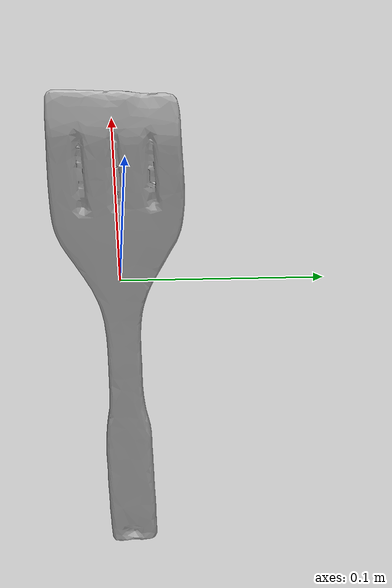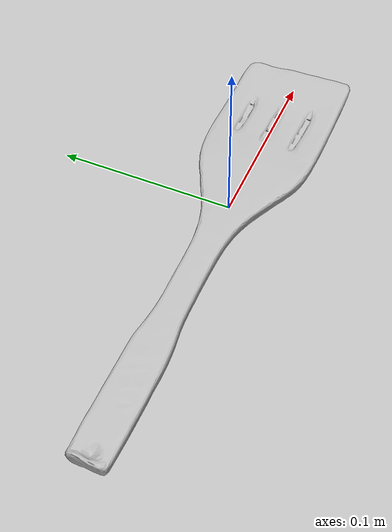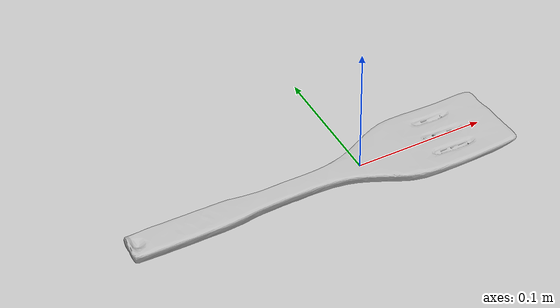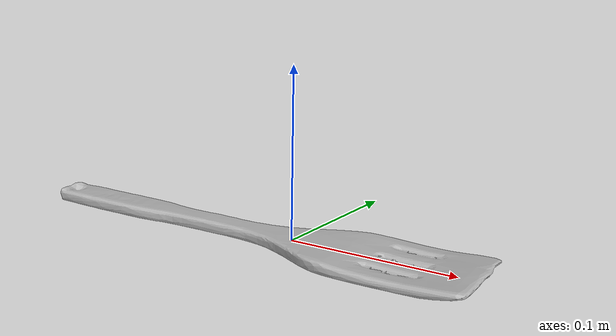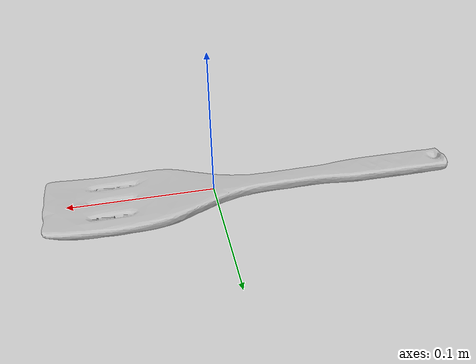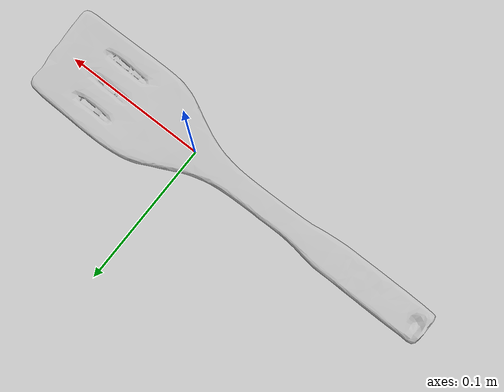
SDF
<?xml version='1.0'?>
<sdf version='1.6'>
	<model name='a_spatulawoodgap2'>
		<static>false</static>
		<pose>0 0 0 0 0 0</pose>

		<link name='link'>
			<inertial>
			<mass>0.12</mass>
			<pose>-0.040624 -0.010626 5.3115e-05 0 0 0</pose>
				<inertia>
					<ixx>1.3576e-05</ixx>
					<ixy>0</ixy>
					<ixz>0</ixz>
					<iyy>0.00019859</iyy>
					<iyz>0</iyz>
					<izz>0.00021235</izz>
				</inertia>
			</inertial>
			<sensor name="tool_contact_sensor" type="contact">
				<always_on>true</always_on>
				<update_rate>30.0</update_rate>
				<contact>
					<collision>collision</collision>
				</contact>
				<plugin name="tool_bumper" filename="libgazebo_ros_bumper.so">
					<bumperTopicName>tool_contact_sensor_state</bumperTopicName>
					<frameName>world</frameName>
				</plugin>
			</sensor>
			<collision name='collision'>
				<geometry>
					<mesh>
						<uri>model://a_spatulawoodgap2/a_spatulawoodgap2.dae</uri>
					</mesh>
				</geometry>
				<surface>
					<friction>
						<ode>
							<mu>0.2</mu>
							<mu2>0.2</mu2>
						</ode>
					</friction>
				</surface>
			</collision>
			<visual name='visual'>
				<geometry>
					<mesh>
						<uri>model://a_spatulawoodgap2/a_spatulawoodgap2.dae</uri>
					</mesh>
				</geometry>
			</visual>
		</link>
	</model>
</sdf>
